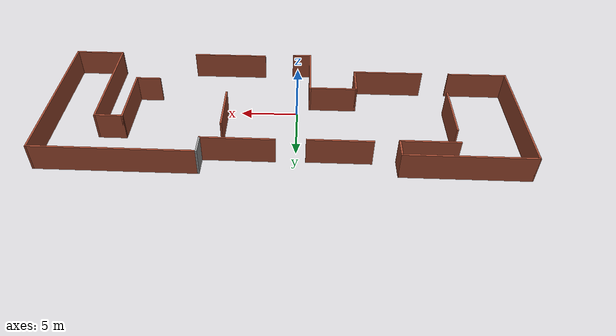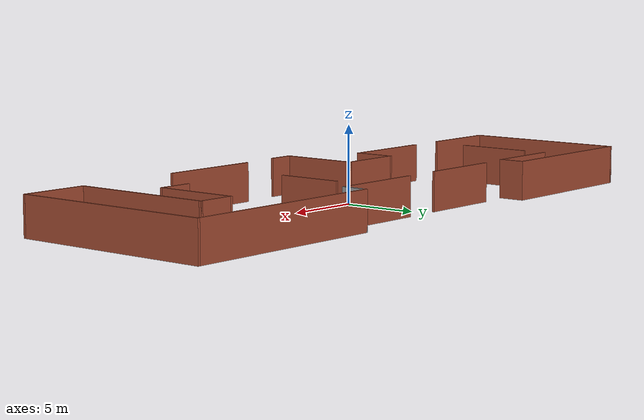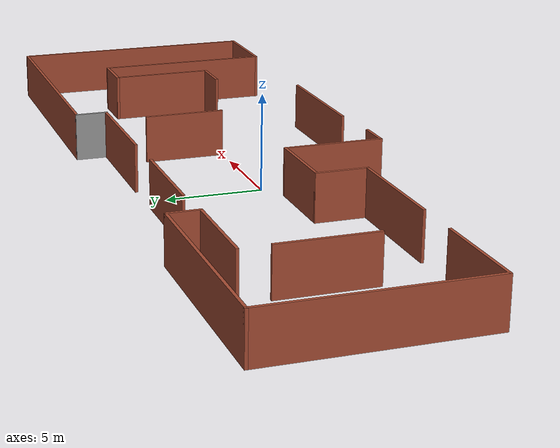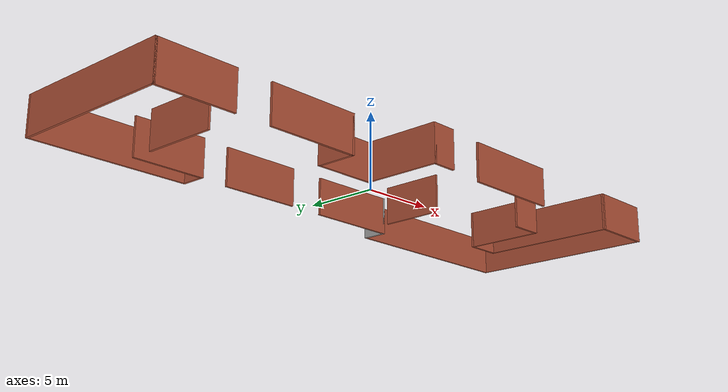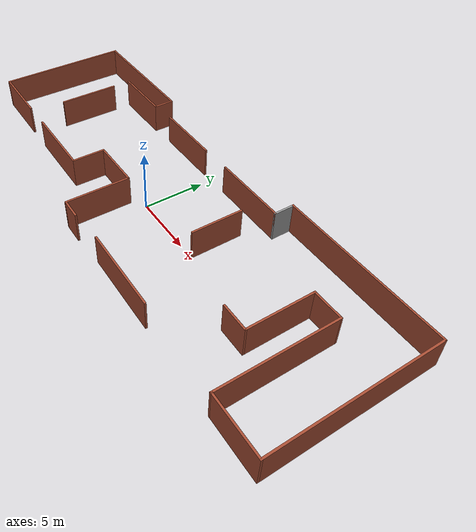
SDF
<?xml version='1.0'?>
<sdf version='1.6'>
  <model name='myGaz'>
    <pose frame=''>1.23356 0.862344 0 0 -0 0</pose>
    <link name='Wall_11'>
      <collision name='Wall_11_Collision'>
        <geometry>
          <box>
            <size>6.75 0.15 2.5</size>
          </box>
        </geometry>
        <pose frame=''>0 0 1.25 0 -0 0</pose>
      </collision>
      <visual name='Wall_11_Visual'>
        <pose frame=''>0 0 1.25 0 -0 0</pose>
        <geometry>
          <box>
            <size>6.75 0.15 2.5</size>
          </box>
        </geometry>
        <material>
          <script>
            <uri>file://media/materials/scripts/gazebo.material</uri>
            <name>Gazebo/Bricks</name>
          </script>
          <ambient>1 1 1 1</ambient>
        </material>
        <meta>
          <layer>0</layer>
        </meta>
      </visual>
      <pose frame=''>5.32283 -6.55057 0 0 -0 0</pose>
    </link>
    <link name='Wall_13'>
      <collision name='Wall_13_Collision'>
        <geometry>
          <box>
            <size>10.75 0.15 2.5</size>
          </box>
        </geometry>
        <pose frame=''>0 0 1.25 0 -0 0</pose>
      </collision>
      <visual name='Wall_13_Visual'>
        <pose frame=''>0 0 1.25 0 -0 0</pose>
        <geometry>
          <box>
            <size>10.75 0.15 2.5</size>
          </box>
        </geometry>
        <material>
          <script>
            <uri>file://media/materials/scripts/gazebo.material</uri>
            <name>Gazebo/Bricks</name>
          </script>
          <ambient>1 1 1 1</ambient>
        </material>
        <meta>
          <layer>0</layer>
        </meta>
      </visual>
      <pose frame=''>-14.875 6.53593 0 0 -0 0</pose>
    </link>
    <link name='Wall_14'>
      <collision name='Wall_14_Collision'>
        <geometry>
          <box>
            <size>1.75 0.15 2.5</size>
          </box>
        </geometry>
        <pose frame=''>0 0 1.25 0 -0 0</pose>
      </collision>
      <visual name='Wall_14_Visual'>
        <pose frame=''>0 0 1.25 0 -0 0</pose>
        <geometry>
          <box>
            <size>1.75 0.15 2.5</size>
          </box>
        </geometry>
        <material>
          <script>
            <uri>file://media/materials/scripts/gazebo.material</uri>
            <name>Gazebo/Bricks</name>
          </script>
          <ambient>1 1 1 1</ambient>
        </material>
        <meta>
          <layer>0</layer>
        </meta>
      </visual>
      <pose frame=''>-9.57497 5.73593 0 0 -0 -1.5708</pose>
    </link>
    <link name='Wall_15'>
      <collision name='Wall_15_Collision'>
        <geometry>
          <box>
            <size>5 0.15 2.5</size>
          </box>
        </geometry>
        <pose frame=''>0 0 1.25 0 -0 0</pose>
      </collision>
      <visual name='Wall_15_Visual'>
        <pose frame=''>0 0 1.25 0 -0 0</pose>
        <geometry>
          <box>
            <size>5 0.15 2.5</size>
          </box>
        </geometry>
        <material>
          <script>
            <uri>file://media/materials/scripts/gazebo.material</uri>
            <name>Gazebo/Bricks</name>
          </script>
          <ambient>1 1 1 1</ambient>
        </material>
        <meta>
          <layer>0</layer>
        </meta>
      </visual>
      <pose frame=''>-12 4.93593 0 0 -0 3.14159</pose>
    </link>
    <link name='Wall_18'>
      <collision name='Wall_18_Collision'>
        <geometry>
          <box>
            <size>5.5 0.15 2.5</size>
          </box>
        </geometry>
        <pose frame=''>0 0 1.25 0 -0 0</pose>
      </collision>
      <visual name='Wall_18_Visual'>
        <pose frame=''>0 0 1.25 0 -0 0</pose>
        <geometry>
          <box>
            <size>5.5 0.15 2.5</size>
          </box>
        </geometry>
        <material>
          <script>
            <uri>file://media/materials/scripts/gazebo.material</uri>
            <name>Gazebo/Bricks</name>
          </script>
          <ambient>1 1 1 1</ambient>
        </material>
        <meta>
          <layer>0</layer>
        </meta>
      </visual>
      <pose frame=''>-4.80043 5.12878 0 0 -0 0</pose>
    </link>
    <link name='Wall_2'>
      <collision name='Wall_2_Collision'>
        <geometry>
          <box>
            <size>11 0.15 2.5</size>
          </box>
        </geometry>
        <pose frame=''>0 0 1.25 0 -0 0</pose>
      </collision>
      <visual name='Wall_2_Visual'>
        <pose frame=''>0 0 1.25 0 -0 0</pose>
        <geometry>
          <box>
            <size>11 0.15 2.5</size>
          </box>
        </geometry>
        <material>
          <script>
            <uri>file://media/materials/scripts/gazebo.material</uri>
            <name>Gazebo/Bricks</name>
          </script>
          <ambient>1 1 1 1</ambient>
        </material>
        <meta>
          <layer>0</layer>
        </meta>
      </visual>
      <pose frame=''>-20.175 1.11093 0 0 -0 -1.5708</pose>
    </link>
    <link name='Wall_20'>
      <collision name='Wall_20_Collision'>
        <geometry>
          <box>
            <size>6.25 0.15 2.5</size>
          </box>
        </geometry>
        <pose frame=''>0 0 1.25 0 -0 0</pose>
      </collision>
      <visual name='Wall_20_Visual'>
        <pose frame=''>0 0 1.25 0 -0 0</pose>
        <geometry>
          <box>
            <size>6.25 0.15 2.5</size>
          </box>
        </geometry>
        <material>
          <script>
            <uri>file://media/materials/scripts/gazebo.material</uri>
            <name>Gazebo/Bricks</name>
          </script>
          <ambient>1 1 1 1</ambient>
        </material>
        <meta>
          <layer>0</layer>
        </meta>
      </visual>
      <pose frame=''>3.52497 5.19913 0 0 -0 0</pose>
    </link>
    <link name='Wall_21'>
      <collision name='Wall_21_Collision'>
        <geometry>
          <box>
            <size>1.75 0.15 2.5</size>
          </box>
        </geometry>
        <pose frame=''>0 0 1.25 0 -0 0</pose>
      </collision>
      <visual name='Wall_21_Visual'>
        <pose frame=''>0 0 1.25 0 -0 0</pose>
        <geometry>
          <box>
            <size>1.75 0.15 2.5</size>
          </box>
        </geometry>
        <material>
          <script>
            <uri>file://media/materials/scripts/gazebo.material</uri>
            <name>Gazebo/Grey</name>
          </script>
          <ambient>1 1 1 1</ambient>
        </material>
        <meta>
          <layer>0</layer>
        </meta>
      </visual>
      <pose frame=''>6.57497 5.99913 0 0 -0 1.5708</pose>
    </link>
    <link name='Wall_22'>
      <collision name='Wall_22_Collision'>
        <geometry>
          <box>
            <size>13.75 0.15 2.5</size>
          </box>
        </geometry>
        <pose frame=''>0 0 1.25 0 -0 0</pose>
      </collision>
      <visual name='Wall_22_Visual'>
        <pose frame=''>0 0 1.25 0 -0 0</pose>
        <geometry>
          <box>
            <size>13.75 0.15 2.5</size>
          </box>
        </geometry>
        <material>
          <script>
            <uri>file://media/materials/scripts/gazebo.material</uri>
            <name>Gazebo/Bricks</name>
          </script>
          <ambient>1 1 1 1</ambient>
        </material>
        <meta>
          <layer>0</layer>
        </meta>
      </visual>
      <pose frame=''>13.375 6.79913 0 0 -0 0</pose>
    </link>
    <link name='Wall_23'>
      <collision name='Wall_23_Collision'>
        <geometry>
          <box>
            <size>13.5 0.15 2.5</size>
          </box>
        </geometry>
        <pose frame=''>0 0 1.25 0 -0 0</pose>
      </collision>
      <visual name='Wall_23_Visual'>
        <pose frame=''>0 0 1.25 0 -0 0</pose>
        <geometry>
          <box>
            <size>13.5 0.15 2.5</size>
          </box>
        </geometry>
        <material>
          <script>
            <uri>file://media/materials/scripts/gazebo.material</uri>
            <name>Gazebo/Bricks</name>
          </script>
          <ambient>1 1 1 1</ambient>
        </material>
        <meta>
          <layer>0</layer>
        </meta>
      </visual>
      <pose frame=''>20.175 0.124133 0 0 -0 -1.5708</pose>
    </link>
    <link name='Wall_24'>
      <collision name='Wall_24_Collision'>
        <geometry>
          <box>
            <size>4.5 0.15 2.5</size>
          </box>
        </geometry>
        <pose frame=''>0 0 1.25 0 -0 0</pose>
      </collision>
      <visual name='Wall_24_Visual'>
        <pose frame=''>0 0 1.25 0 -0 0</pose>
        <geometry>
          <box>
            <size>4.5 0.15 2.5</size>
          </box>
        </geometry>
        <material>
          <script>
            <uri>file://media/materials/scripts/gazebo.material</uri>
            <name>Gazebo/Bricks</name>
          </script>
          <ambient>1 1 1 1</ambient>
        </material>
        <meta>
          <layer>0</layer>
        </meta>
      </visual>
      <pose frame=''>18 -6.55087 0 0 -0 3.14159</pose>
    </link>
    <link name='Wall_25'>
      <collision name='Wall_25_Collision'>
        <geometry>
          <box>
            <size>9.5 0.15 2.5</size>
          </box>
        </geometry>
        <pose frame=''>0 0 1.25 0 -0 0</pose>
      </collision>
      <visual name='Wall_25_Visual'>
        <pose frame=''>0 0 1.25 0 -0 0</pose>
        <geometry>
          <box>
            <size>9.5 0.15 2.5</size>
          </box>
        </geometry>
        <material>
          <script>
            <uri>file://media/materials/scripts/gazebo.material</uri>
            <name>Gazebo/Bricks</name>
          </script>
          <ambient>1 1 1 1</ambient>
        </material>
        <meta>
          <layer>0</layer>
        </meta>
      </visual>
      <pose frame=''>15.825 -1.87587 0 0 -0 1.5708</pose>
    </link>
    <link name='Wall_26'>
      <collision name='Wall_26_Collision'>
        <geometry>
          <box>
            <size>2.5 0.15 2.5</size>
          </box>
        </geometry>
        <pose frame=''>0 0 1.25 0 -0 0</pose>
      </collision>
      <visual name='Wall_26_Visual'>
        <pose frame=''>0 0 1.25 0 -0 0</pose>
        <geometry>
          <box>
            <size>2.5 0.15 2.5</size>
          </box>
        </geometry>
        <material>
          <script>
            <uri>file://media/materials/scripts/gazebo.material</uri>
            <name>Gazebo/Bricks</name>
          </script>
          <ambient>1 1 1 1</ambient>
        </material>
        <meta>
          <layer>0</layer>
        </meta>
      </visual>
      <pose frame=''>14.65 2.79913 0 0 -0 3.14159</pose>
    </link>
    <link name='Wall_27'>
      <collision name='Wall_27_Collision'>
        <geometry>
          <box>
            <size>5.5 0.15 2.5</size>
          </box>
        </geometry>
        <pose frame=''>0 0 1.25 0 -0 0</pose>
      </collision>
      <visual name='Wall_27_Visual'>
        <pose frame=''>0 0 1.25 0 -0 0</pose>
        <geometry>
          <box>
            <size>5.5 0.15 2.5</size>
          </box>
        </geometry>
        <material>
          <script>
            <uri>file://media/materials/scripts/gazebo.material</uri>
            <name>Gazebo/Bricks</name>
          </script>
          <ambient>1 1 1 1</ambient>
        </material>
        <meta>
          <layer>0</layer>
        </meta>
      </visual>
      <pose frame=''>13.475 0.124133 0 0 -0 -1.5708</pose>
    </link>
    <link name='Wall_28'>
      <collision name='Wall_28_Collision'>
        <geometry>
          <box>
            <size>2.25 0.15 2.5</size>
          </box>
        </geometry>
        <pose frame=''>0 0 1.25 0 -0 0</pose>
      </collision>
      <visual name='Wall_28_Visual'>
        <pose frame=''>0 0 1.25 0 -0 0</pose>
        <geometry>
          <box>
            <size>2.25 0.15 2.5</size>
          </box>
        </geometry>
        <material>
          <script>
            <uri>file://media/materials/scripts/gazebo.material</uri>
            <name>Gazebo/Bricks</name>
          </script>
          <ambient>1 1 1 1</ambient>
        </material>
        <meta>
          <layer>0</layer>
        </meta>
      </visual>
      <pose frame=''>12.425 -2.55087 0 0 -0 3.14159</pose>
    </link>
    <link name='Wall_3'>
      <collision name='Wall_3_Collision'>
        <geometry>
          <box>
            <size>5.25 0.15 2.5</size>
          </box>
        </geometry>
        <pose frame=''>0 0 1.25 0 -0 0</pose>
      </collision>
      <visual name='Wall_3_Visual'>
        <pose frame=''>0 0 1.25 0 -0 0</pose>
        <geometry>
          <box>
            <size>5.25 0.15 2.5</size>
          </box>
        </geometry>
        <material>
          <script>
            <uri>file://media/materials/scripts/gazebo.material</uri>
            <name>Gazebo/Bricks</name>
          </script>
          <ambient>1 1 1 1</ambient>
        </material>
        <meta>
          <layer>0</layer>
        </meta>
      </visual>
      <pose frame=''>-17.625 -4.31407 0 0 -0 0</pose>
    </link>
    <link name='Wall_30'>
      <collision name='Wall_30_Collision'>
        <geometry>
          <box>
            <size>4.25 0.15 2.5</size>
          </box>
        </geometry>
        <pose frame=''>0 0 1.25 0 -0 0</pose>
      </collision>
      <visual name='Wall_30_Visual'>
        <pose frame=''>0 0 1.25 0 -0 0</pose>
        <geometry>
          <box>
            <size>4.25 0.15 2.5</size>
          </box>
        </geometry>
        <material>
          <script>
            <uri>file://media/materials/scripts/gazebo.material</uri>
            <name>Gazebo/Bricks</name>
          </script>
          <ambient>1 1 1 1</ambient>
        </material>
        <meta>
          <layer>0</layer>
        </meta>
      </visual>
      <pose frame=''>5.04821 1.28466 0 0 -0 -1.5708</pose>
    </link>
    <link name='Wall_32'>
      <collision name='Wall_32_Collision'>
        <geometry>
          <box>
            <size>5 0.15 2.5</size>
          </box>
        </geometry>
        <pose frame=''>0 0 1.25 0 -0 0</pose>
      </collision>
      <visual name='Wall_32_Visual'>
        <pose frame=''>0 0 1.25 0 -0 0</pose>
        <geometry>
          <box>
            <size>5 0.15 2.5</size>
          </box>
        </geometry>
        <material>
          <script>
            <uri>file://media/materials/scripts/gazebo.material</uri>
            <name>Gazebo/Bricks</name>
          </script>
          <ambient>1 1 1 1</ambient>
        </material>
        <meta>
          <layer>0</layer>
        </meta>
      </visual>
      <pose frame=''>-14.4408 0.944837 0 0 -0 -1.5708</pose>
    </link>
    <link name='Wall_5'>
      <collision name='Wall_5_Collision'>
        <geometry>
          <box>
            <size>6.25 0.15 2.5</size>
          </box>
        </geometry>
        <pose frame=''>0 0 1.25 0 -0 0</pose>
      </collision>
      <visual name='Wall_5_Visual'>
        <pose frame=''>0 0 1.25 0 -0 0</pose>
        <geometry>
          <box>
            <size>6.25 0.15 2.5</size>
          </box>
        </geometry>
        <material>
          <script>
            <uri>file://media/materials/scripts/gazebo.material</uri>
            <name>Gazebo/Bricks</name>
          </script>
          <ambient>1 1 1 1</ambient>
        </material>
        <meta>
          <layer>0</layer>
        </meta>
      </visual>
      <pose frame=''>-9.49118 -4.29913 0 0 -0 0</pose>
    </link>
    <link name='Wall_6'>
      <collision name='Wall_6_Collision'>
        <geometry>
          <box>
            <size>2.75 0.15 2.5</size>
          </box>
        </geometry>
        <pose frame=''>0 0 1.25 0 -0 0</pose>
      </collision>
      <visual name='Wall_6_Visual'>
        <pose frame=''>0 0 1.25 0 -0 0</pose>
        <geometry>
          <box>
            <size>2.75 0.15 2.5</size>
          </box>
        </geometry>
        <material>
          <script>
            <uri>file://media/materials/scripts/gazebo.material</uri>
            <name>Gazebo/Bricks</name>
          </script>
          <ambient>1 1 1 1</ambient>
        </material>
        <meta>
          <layer>0</layer>
        </meta>
      </visual>
      <pose frame=''>-6.44118 -2.99913 0 0 -0 1.5708</pose>
    </link>
    <link name='Wall_7'>
      <collision name='Wall_7_Collision'>
        <geometry>
          <box>
            <size>4.25 0.15 2.5</size>
          </box>
        </geometry>
        <pose frame=''>0 0 1.25 0 -0 0</pose>
      </collision>
      <visual name='Wall_7_Visual'>
        <pose frame=''>0 0 1.25 0 -0 0</pose>
        <geometry>
          <box>
            <size>4.25 0.15 2.5</size>
          </box>
        </geometry>
        <material>
          <script>
            <uri>file://media/materials/scripts/gazebo.material</uri>
            <name>Gazebo/Bricks</name>
          </script>
          <ambient>1 1 1 1</ambient>
        </material>
        <meta>
          <layer>0</layer>
        </meta>
      </visual>
      <pose frame=''>-4.39117 -1.69913 0 0 -0 0</pose>
    </link>
    <link name='Wall_8'>
      <collision name='Wall_8_Collision'>
        <geometry>
          <box>
            <size>5.25 0.15 2.5</size>
          </box>
        </geometry>
        <pose frame=''>0 0 1.25 0 -0 0</pose>
      </collision>
      <visual name='Wall_8_Visual'>
        <pose frame=''>0 0 1.25 0 -0 0</pose>
        <geometry>
          <box>
            <size>5.25 0.15 2.5</size>
          </box>
        </geometry>
        <material>
          <script>
            <uri>file://media/materials/scripts/gazebo.material</uri>
            <name>Gazebo/Bricks</name>
          </script>
          <ambient>1 1 1 1</ambient>
        </material>
        <meta>
          <layer>0</layer>
        </meta>
      </visual>
      <pose frame=''>-2.34117 -4.24913 0 0 -0 -1.5708</pose>
    </link>
    <link name='Wall_9'>
      <collision name='Wall_9_Collision'>
        <geometry>
          <box>
            <size>1.75 0.15 2.5</size>
          </box>
        </geometry>
        <pose frame=''>0 0 1.25 0 -0 0</pose>
      </collision>
      <visual name='Wall_9_Visual'>
        <pose frame=''>0 0 1.25 0 -0 0</pose>
        <geometry>
          <box>
            <size>1.75 0.15 2.5</size>
          </box>
        </geometry>
        <material>
          <script>
            <uri>file://media/materials/scripts/gazebo.material</uri>
            <name>Gazebo/Bricks</name>
          </script>
          <ambient>1 1 1 1</ambient>
        </material>
        <meta>
          <layer>0</layer>
        </meta>
      </visual>
      <pose frame=''>-1.54117 -6.79913 0 0 -0 0</pose>
    </link>
    <static>1</static>
  </model>
</sdf>
